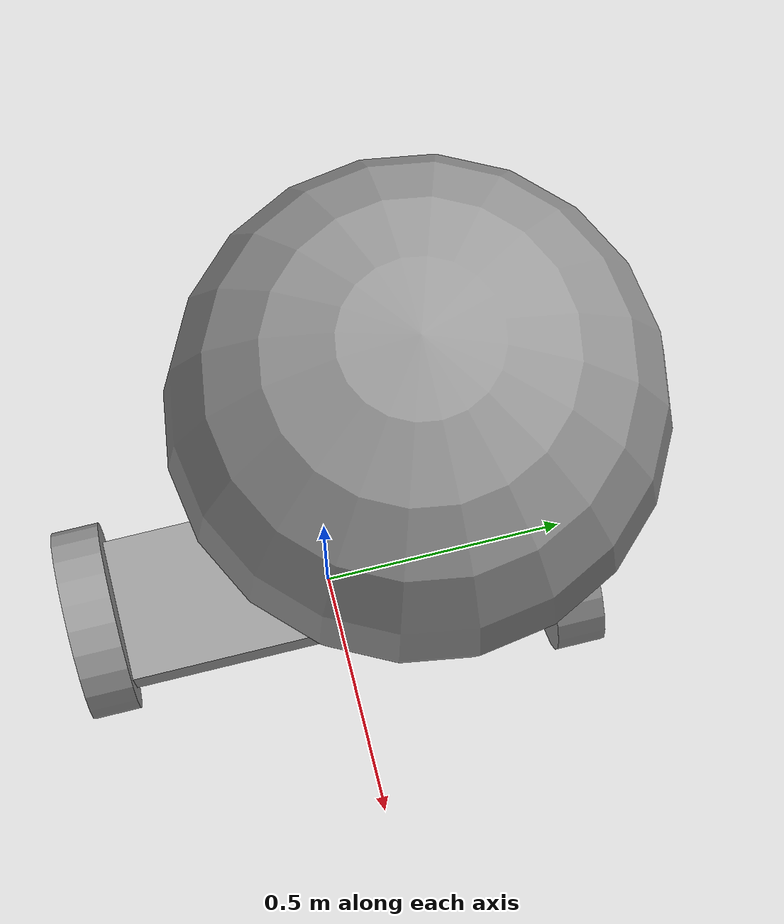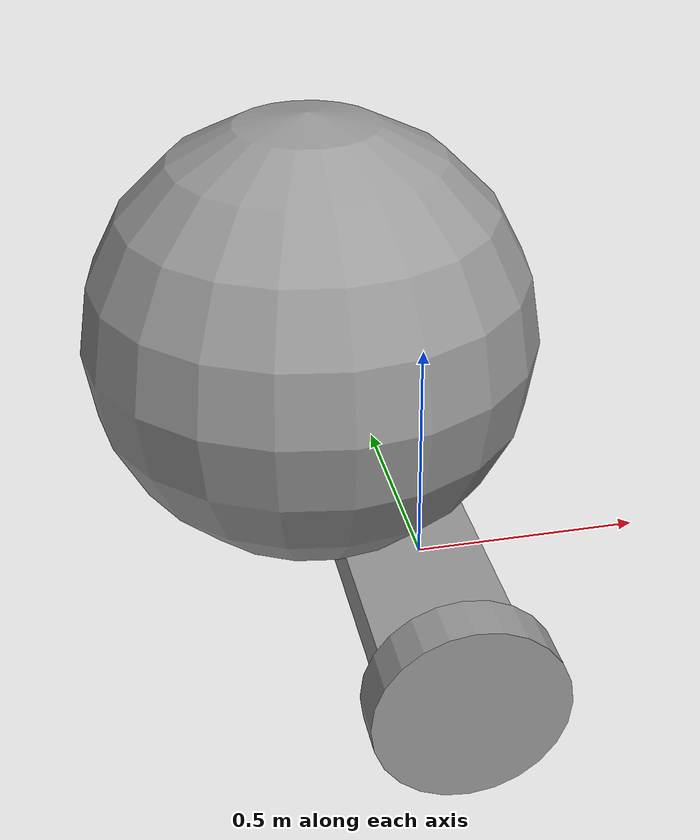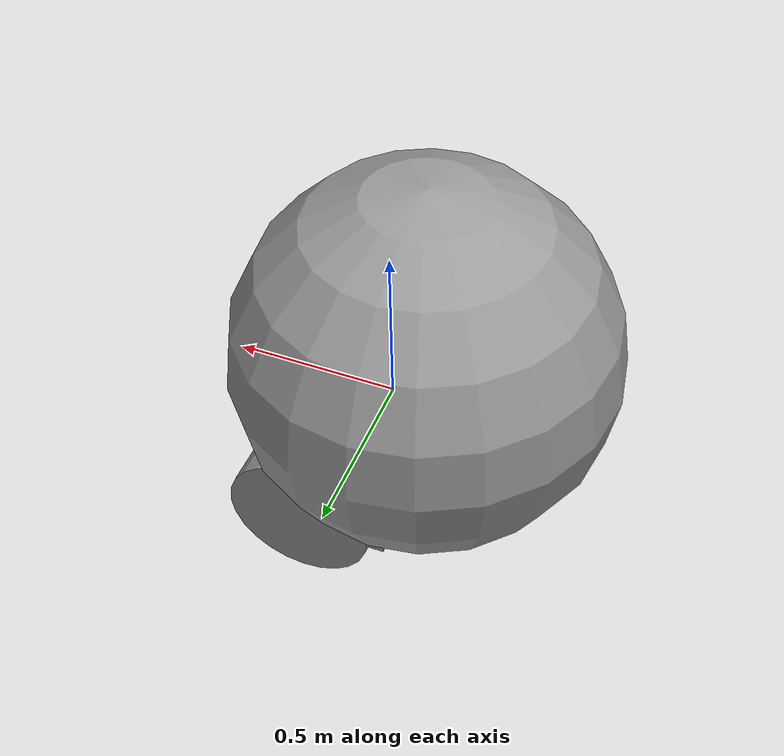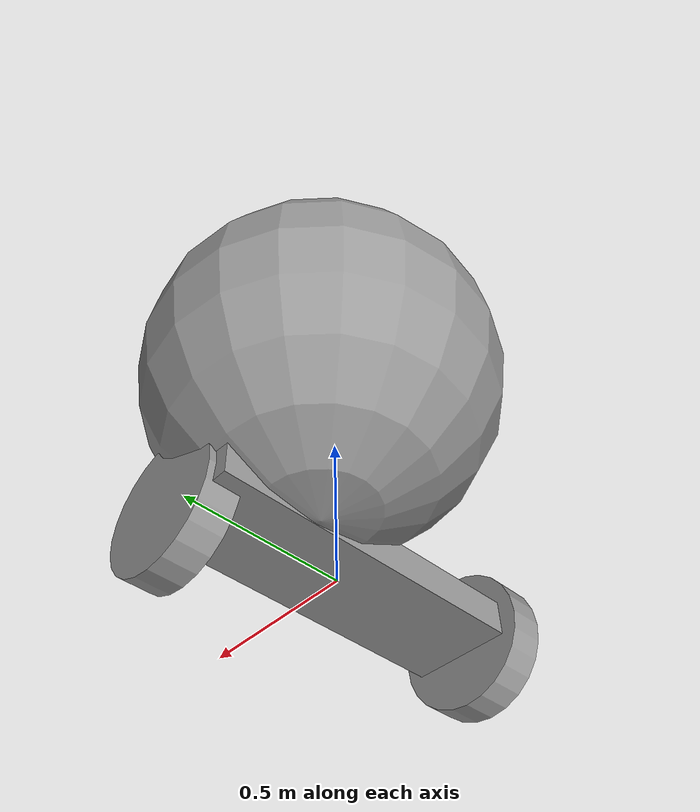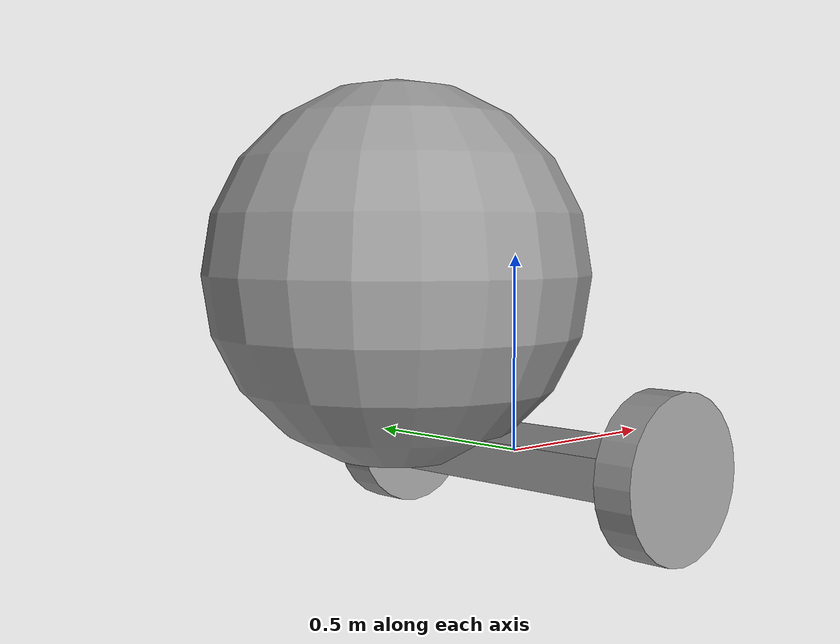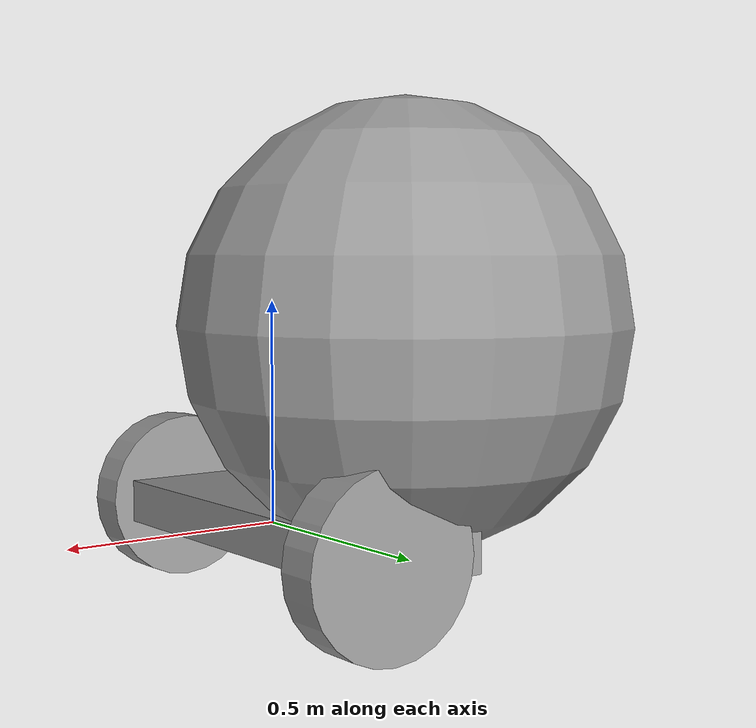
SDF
<?xml version='1.0'?>
<sdf version='1.6'>
  <model name='robot'>
    <link name='link_0'>
      <pose frame=''>-0.029077 0.011853 -1e-06 0 -0 0</pose>
      <inertial>
        <mass>0.131777</mass>
        <inertia>
          <ixx>0.0034909</ixx>
          <ixy>0</ixy>
          <ixz>0</ixz>
          <iyy>0.0117508</iyy>
          <iyz>0</iyz>
          <izz>0.013703</izz>
        </inertia>
        <pose frame=''>0 0 0.02 0 -0 0</pose>
      </inertial>
      <self_collide>0</self_collide>
      <kinematic>0</kinematic>
      <visual name='visual'>
        <pose frame=''>0 0 0 0 -0 0</pose>
        <geometry>
          <box>
            <size>0.3 0.999999 0.1</size>
          </box>
        </geometry>
        <material>
          <lighting>1</lighting>
          <script>
            <uri>file://media/materials/scripts/gazebo.material</uri>
            <name>Gazebo/Grey</name>
          </script>
          <shader type='pixel'>
            <normal_map>__default__</normal_map>
          </shader>
          <ambient>0.3 0.3 0.3 1</ambient>
          <diffuse>0.7 0.7 0.7 1</diffuse>
          <specular>0.01 0.01 0.01 1</specular>
          <emissive>0 0 0 1</emissive>
        </material>
        <transparency>0</transparency>
        <cast_shadows>1</cast_shadows>
      </visual>
      <collision name='collision'>
        <laser_retro>0</laser_retro>
        <max_contacts>10</max_contacts>
        <pose frame=''>0 0 0 0 -0 0</pose>
        <geometry>
          <box>
            <size>0.3 0.999999 0.1</size>
          </box>
        </geometry>
        <surface>
          <friction>
            <ode>
              <mu>1</mu>
              <mu2>1</mu2>
              <fdir1>0 0 0</fdir1>
              <slip1>0</slip1>
              <slip2>0</slip2>
            </ode>
            <torsional>
              <coefficient>1</coefficient>
              <patch_radius>0</patch_radius>
              <surface_radius>0</surface_radius>
              <use_patch_radius>1</use_patch_radius>
              <ode>
                <slip>0</slip>
              </ode>
            </torsional>
          </friction>
          <bounce>
            <restitution_coefficient>0</restitution_coefficient>
            <threshold>1e+06</threshold>
          </bounce>
          <contact>
            <collide_without_contact>0</collide_without_contact>
            <collide_without_contact_bitmask>1</collide_without_contact_bitmask>
            <collide_bitmask>1</collide_bitmask>
            <ode>
              <soft_cfm>0</soft_cfm>
              <soft_erp>0.2</soft_erp>
              <kp>1e+13</kp>
              <kd>1</kd>
              <max_vel>0.01</max_vel>
              <min_depth>0</min_depth>
            </ode>
            <bullet>
              <split_impulse>1</split_impulse>
              <split_impulse_penetration_threshold>-0.01</split_impulse_penetration_threshold>
              <soft_cfm>0</soft_cfm>
              <soft_erp>0.2</soft_erp>
              <kp>1e+13</kp>
              <kd>1</kd>
            </bullet>
          </contact>
        </surface>
      </collision>
    </link>
    <link name='link_1'>
      <pose frame=''>-0.195068 0.234058 0.4502 0.000281 -0 -6e-06</pose>
      <inertial>
        <mass>1</mass>
        <inertia>
          <ixx>0.1</ixx>
          <ixy>0</ixy>
          <ixz>0</ixz>
          <iyy>0.1</iyy>
          <iyz>0</iyz>
          <izz>0.1</izz>
        </inertia>
      </inertial>
      <visual name='visual'>
        <pose frame=''>0 0 0 0 -0 0</pose>
        <geometry>
          <sphere>
            <radius>0.5</radius>
          </sphere>
        </geometry>
        <material>
          <lighting>1</lighting>
          <script>
            <uri>file://media/materials/scripts/gazebo.material</uri>
            <name>Gazebo/Grey</name>
          </script>
          <shader type='pixel'/>
          <ambient>0.3 0.3 0.3 1</ambient>
          <diffuse>0.7 0.7 0.7 1</diffuse>
          <specular>0.01 0.01 0.01 1</specular>
          <emissive>0 0 0 1</emissive>
        </material>
        <transparency>0</transparency>
        <cast_shadows>1</cast_shadows>
      </visual>
      <collision name='collision'>
        <laser_retro>0</laser_retro>
        <max_contacts>10</max_contacts>
        <pose frame=''>0 0 0 0 -0 0</pose>
        <geometry>
          <sphere>
            <radius>0.5</radius>
          </sphere>
        </geometry>
        <surface>
          <friction>
            <ode>
              <mu>1</mu>
              <mu2>1</mu2>
              <fdir1>0 0 0</fdir1>
              <slip1>0</slip1>
              <slip2>0</slip2>
            </ode>
            <torsional>
              <coefficient>1</coefficient>
              <patch_radius>0</patch_radius>
              <surface_radius>0</surface_radius>
              <use_patch_radius>1</use_patch_radius>
              <ode>
                <slip>0</slip>
              </ode>
            </torsional>
          </friction>
          <bounce>
            <restitution_coefficient>0</restitution_coefficient>
            <threshold>1e+06</threshold>
          </bounce>
          <contact>
            <collide_without_contact>0</collide_without_contact>
            <collide_without_contact_bitmask>1</collide_without_contact_bitmask>
            <collide_bitmask>1</collide_bitmask>
            <ode>
              <soft_cfm>0</soft_cfm>
              <soft_erp>0.2</soft_erp>
              <kp>1e+13</kp>
              <kd>1</kd>
              <max_vel>0.01</max_vel>
              <min_depth>0</min_depth>
            </ode>
            <bullet>
              <split_impulse>1</split_impulse>
              <split_impulse_penetration_threshold>-0.01</split_impulse_penetration_threshold>
              <soft_cfm>0</soft_cfm>
              <soft_erp>0.2</soft_erp>
              <kp>1e+13</kp>
              <kd>1</kd>
            </bullet>
          </contact>
        </surface>
      </collision>
    </link>
    <link name='link_1_clone'>
      <pose frame=''>-0.029077 -0.494337 4.7e-05 1.5707 -0 0</pose>
      <inertial>
        <mass>1</mass>
        <inertia>
          <ixx>0.145833</ixx>
          <ixy>0</ixy>
          <ixz>0</ixz>
          <iyy>0.145833</iyy>
          <iyz>0</iyz>
          <izz>0.125</izz>
        </inertia>
        <pose frame=''>0 0 0 0 -0 0</pose>
      </inertial>
      <self_collide>0</self_collide>
      <kinematic>0</kinematic>
      <visual name='visual'>
        <pose frame=''>0 0 0 0 -0 0</pose>
        <geometry>
          <cylinder>
            <radius>0.2</radius>
            <length>0.1</length>
          </cylinder>
        </geometry>
        <material>
          <lighting>1</lighting>
          <script>
            <uri>file://media/materials/scripts/gazebo.material</uri>
            <name>Gazebo/Grey</name>
          </script>
          <shader type='pixel'>
            <normal_map>__default__</normal_map>
          </shader>
          <ambient>0.3 0.3 0.3 1</ambient>
          <diffuse>0.7 0.7 0.7 1</diffuse>
          <specular>0.01 0.01 0.01 1</specular>
          <emissive>0 0 0 1</emissive>
        </material>
        <transparency>0</transparency>
        <cast_shadows>1</cast_shadows>
      </visual>
      <collision name='collision'>
        <laser_retro>0</laser_retro>
        <max_contacts>10</max_contacts>
        <pose frame=''>0 0 0 0 -0 0</pose>
        <geometry>
          <cylinder>
            <radius>0.2</radius>
            <length>0.1</length>
          </cylinder>
        </geometry>
        <surface>
          <friction>
            <ode>
              <mu>1</mu>
              <mu2>1</mu2>
              <fdir1>0 0 0</fdir1>
              <slip1>0</slip1>
              <slip2>0</slip2>
            </ode>
            <torsional>
              <coefficient>1</coefficient>
              <patch_radius>0</patch_radius>
              <surface_radius>0</surface_radius>
              <use_patch_radius>1</use_patch_radius>
              <ode>
                <slip>0</slip>
              </ode>
            </torsional>
          </friction>
          <bounce>
            <restitution_coefficient>0</restitution_coefficient>
            <threshold>1e+06</threshold>
          </bounce>
          <contact>
            <collide_without_contact>0</collide_without_contact>
            <collide_without_contact_bitmask>1</collide_without_contact_bitmask>
            <collide_bitmask>1</collide_bitmask>
            <ode>
              <soft_cfm>0</soft_cfm>
              <soft_erp>0.2</soft_erp>
              <kp>1e+13</kp>
              <kd>1</kd>
              <max_vel>0.01</max_vel>
              <min_depth>0</min_depth>
            </ode>
            <bullet>
              <split_impulse>1</split_impulse>
              <split_impulse_penetration_threshold>-0.01</split_impulse_penetration_threshold>
              <soft_cfm>0</soft_cfm>
              <soft_erp>0.2</soft_erp>
              <kp>1e+13</kp>
              <kd>1</kd>
            </bullet>
          </contact>
        </surface>
      </collision>
    </link>
    <link name='link_1_clone_clone'>
      <pose frame=''>0.058154 0.481518 -4.7e-05 1.5707 -0 0</pose>
      <inertial>
        <mass>1</mass>
        <inertia>
          <ixx>0.145833</ixx>
          <ixy>0</ixy>
          <ixz>0</ixz>
          <iyy>0.145833</iyy>
          <iyz>0</iyz>
          <izz>0.125</izz>
        </inertia>
        <pose frame=''>0 0 0 0 -0 0</pose>
      </inertial>
      <self_collide>0</self_collide>
      <kinematic>0</kinematic>
      <visual name='visual'>
        <pose frame=''>0 0 0 0 -0 0</pose>
        <geometry>
          <cylinder>
            <radius>0.2</radius>
            <length>0.1</length>
          </cylinder>
        </geometry>
        <material>
          <lighting>1</lighting>
          <script>
            <uri>file://media/materials/scripts/gazebo.material</uri>
            <name>Gazebo/Grey</name>
          </script>
          <shader type='pixel'>
            <normal_map>__default__</normal_map>
          </shader>
          <ambient>0.3 0.3 0.3 1</ambient>
          <diffuse>0.7 0.7 0.7 1</diffuse>
          <specular>0.01 0.01 0.01 1</specular>
          <emissive>0 0 0 1</emissive>
        </material>
        <transparency>0</transparency>
        <cast_shadows>1</cast_shadows>
      </visual>
      <collision name='collision'>
        <laser_retro>0</laser_retro>
        <max_contacts>10</max_contacts>
        <pose frame=''>0 0 0 0 -0 0</pose>
        <geometry>
          <cylinder>
            <radius>0.2</radius>
            <length>0.1</length>
          </cylinder>
        </geometry>
        <surface>
          <friction>
            <ode>
              <mu>1</mu>
              <mu2>1</mu2>
              <fdir1>0 0 0</fdir1>
              <slip1>0</slip1>
              <slip2>0</slip2>
            </ode>
            <torsional>
              <coefficient>1</coefficient>
              <patch_radius>0</patch_radius>
              <surface_radius>0</surface_radius>
              <use_patch_radius>1</use_patch_radius>
              <ode>
                <slip>0</slip>
              </ode>
            </torsional>
          </friction>
          <bounce>
            <restitution_coefficient>0</restitution_coefficient>
            <threshold>1e+06</threshold>
          </bounce>
          <contact>
            <collide_without_contact>0</collide_without_contact>
            <collide_without_contact_bitmask>1</collide_without_contact_bitmask>
            <collide_bitmask>1</collide_bitmask>
            <ode>
              <soft_cfm>0</soft_cfm>
              <soft_erp>0.2</soft_erp>
              <kp>1e+13</kp>
              <kd>1</kd>
              <max_vel>0.01</max_vel>
              <min_depth>0</min_depth>
            </ode>
            <bullet>
              <split_impulse>1</split_impulse>
              <split_impulse_penetration_threshold>-0.01</split_impulse_penetration_threshold>
              <soft_cfm>0</soft_cfm>
              <soft_erp>0.2</soft_erp>
              <kp>1e+13</kp>
              <kd>1</kd>
            </bullet>
          </contact>
        </surface>
      </collision>
    </link>
    <static>0</static>
    <allow_auto_disable>1</allow_auto_disable>
  </model>
</sdf>
